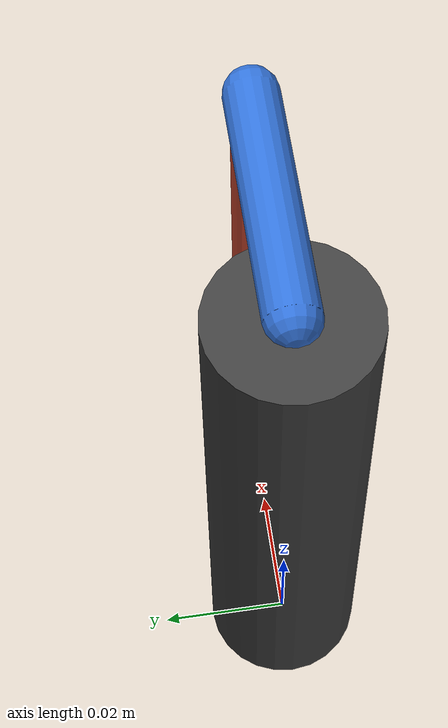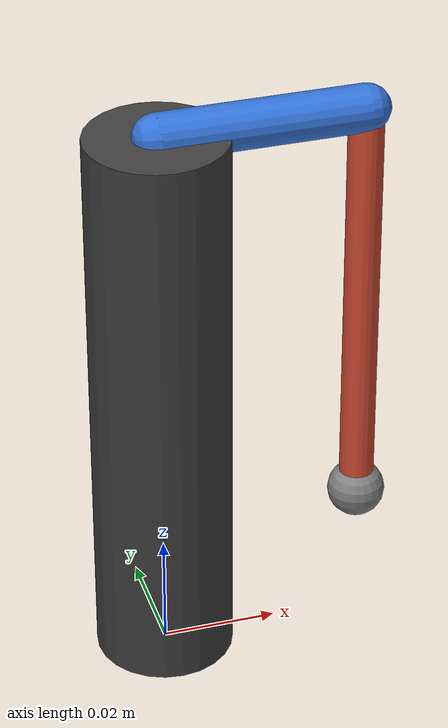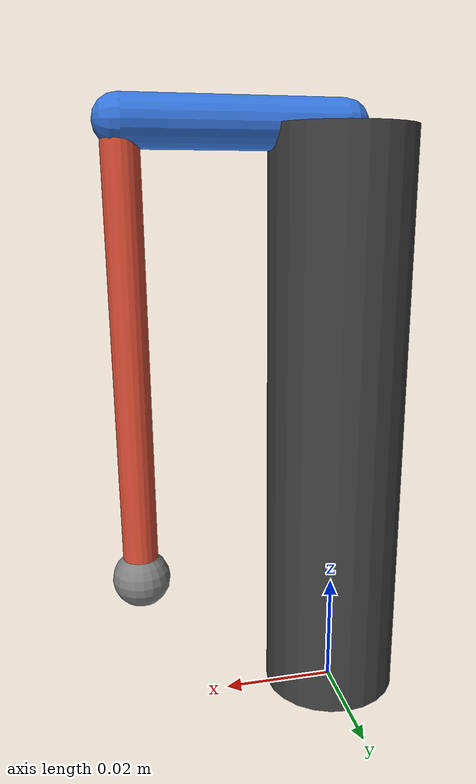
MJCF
<mujoco model="furuta">
  <compiler angle="radian" autolimits="true"/>
  <option timestep="0.0005" integrator="RK4" gravity="0 0 -9.81"/>

  <default>
    <geom contype="0" conaffinity="0"/>   <!-- no collisions; this is a kinematic model -->
  </default>

  <worldbody>
    <light pos="0 0 1.0" dir="0 0 -1"/>

    <body name="board" pos="0 0 0">
      <joint name="tilt" type="hinge" axis="0 1 0" damping="0.5" range="-0.7 0.7"/>
      <inertial pos="0 0 0.05" mass="0.2" diaginertia="2e-3 2e-3 2e-3"/>
      <geom type="cylinder" size="0.012 0.05" pos="0 0 0.05" rgba=".25 .25 .25 1"/>

      <body name="arm" pos="0 0 0.10">
        <joint name="arm" type="hinge" axis="0 0 1" damping="9.4e-4" frictionloss="6.0e-3"/>
        <!-- arm own z-inertia = J_ARM (rotor + arm mass); mass on-axis so it only sets Izz -->
        <inertial pos="0 0 0" mass="0.015" diaginertia="6.84e-5 6.84e-5 6.84e-5"/>
        <geom type="capsule" fromto="0 0 0 0.035 0 0" size="0.004" rgba=".2 .45 .85 1"/>

        <body name="pole" pos="0.035 0 0">
          <!-- axis = -x so +V -> +theta_dot, matching the measured firmware convention
               (sign_check: +V -> +theta_dot). Keeps sim<->firmware obs/action mapping 1:1. -->
          <joint name="pole" type="hinge" axis="-1 0 0" damping="5.06e-5" frictionloss="0.35e-3"/>
          <!-- CoM L_P below pivot; about-CoM Ixx=8.4e-6 -> about-pivot 4.64e-5 -> alpha=214 -->
          <inertial pos="0 0 -0.0375" mass="0.027" diaginertia="8.4e-6 8.4e-6 1e-7"/>
          <geom type="capsule" fromto="0 0 0 0 0 -0.075" size="0.003" rgba=".85 .3 .2 1"/>
          <site name="tip" pos="0 0 -0.075" size="0.005"/>
        </body>
      </body>
    </body>
  </worldbody>

  <actuator>
    <!-- ctrl = motor voltage [V]; gear = KM so applied torque = KM*ctrl -->
    <motor name="motor" joint="arm" gear="0.0127" ctrlrange="-6 6"/>
    <!-- tilt: stiff position servo tracking beta_ref [rad] (board/LX-16A). ctrl = beta_ref. -->
    <position name="tilt" joint="tilt" kp="50" ctrlrange="-0.6 0.6"/>
  </actuator>
</mujoco>
